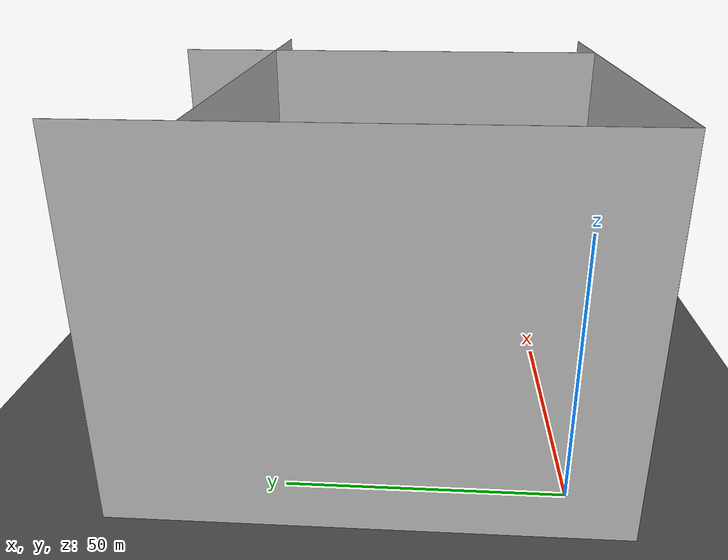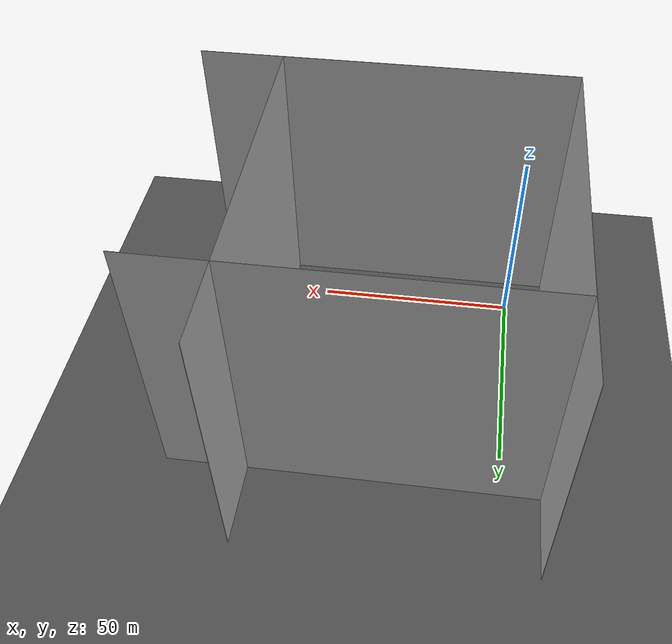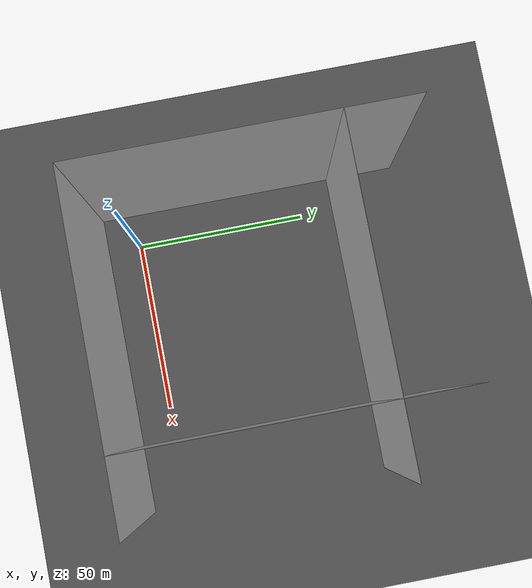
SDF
<sdf version="1.5">
 <world name="dubai_track">
  <plugin name="ros_interface_plugin" filename="librotors_gazebo_ros_interface_plugin.so"/>
  <physics name="default_physics" default="0" type="ode">
   <gravity>0 0 -9.8066</gravity>
   <ode>
    <solver>
     <type>quick</type>
     <iters>150</iters>
     <sor>1.3</sor>
     <use_dynamic_moi_rescaling>0</use_dynamic_moi_rescaling>
    </solver>
    <constraints>
     <cfm>0.00001</cfm>
     <erp>0.2</erp>
     <contact_max_correcting_vel>1000</contact_max_correcting_vel>
     <contact_surface_layer>0.01</contact_surface_layer>
    </constraints>
   </ode>
   <max_step_size>0.004</max_step_size>
   <real_time_factor>1000.0</real_time_factor>
   <real_time_update_rate>250</real_time_update_rate>
   <magnetic_field>6.0e-6 2.3e-5 -4.2e-5</magnetic_field>
  </physics>
  <model name="ground_plane">
   <static>1</static>
   <link name="link">
    <collision name="collision">
     <geometry><plane><normal>0 0 1</normal><size>120 120</size></plane></geometry>
     <surface><friction><ode><mu>100</mu><mu2>50</mu2></ode></friction></surface>
    </collision>
    <visual name="visual">
     <cast_shadows>0</cast_shadows>
     <geometry><plane><normal>0 0 1</normal><size>120 120</size></plane></geometry>
     <material>
      <script>
       <uri>model://race_track/iros_materials/materials/scripts/asphalt.material</uri>
       <uri>model://race_track/iros_materials/materials/textures</uri>
       <name>iros/asphalt</name>
      </script>
     </material>
    </visual>
   </link>
  </model>
  <model name="wall_1">
   <pose>-10 35 34 0 -0 0</pose>
   <static>1</static>
   <link name="link">
    <inertial><mass>1</mass></inertial>
    <collision name="collision"><geometry><box><size>0.1 90 70</size></box></geometry></collision>
    <visual name="visual">
     <geometry><box><size>0.1 90 70</size></box></geometry>
     <material>
      <script>
       <uri>model://race_track/iros_materials/materials/scripts/sky.material</uri>
       <uri>model://race_track/iros_materials/materials/textures</uri>
       <name>iros/sky</name>
      </script>
     </material>
    </visual>
   </link>
  </model>
  <model name="wall_2">
   <pose>60 35 34 0 -0 0</pose>
   <static>1</static>
   <link name="link">
    <inertial><mass>1</mass></inertial>
    <collision name="collision"><geometry><box><size>0.1 90 70</size></box></geometry></collision>
    <visual name="visual">
     <geometry><box><size>0.1 90 70</size></box></geometry>
     <material>
      <script>
       <uri>model://race_track/iros_materials/materials/scripts/sky.material</uri>
       <uri>model://race_track/iros_materials/materials/textures</uri>
       <name>iros/sky</name>
      </script>
     </material>
    </visual>
   </link>
  </model>
  <model name="wall_3">
   <pose>35 60 34 0 -0 0</pose>
   <static>1</static>
   <link name="link">
    <inertial><mass>1</mass></inertial>
    <collision name="collision"><geometry><box><size>90 0.1 70</size></box></geometry></collision>
    <visual name="visual">
     <geometry><box><size>90 0.1 70</size></box></geometry>
     <material>
      <script>
       <uri>model://race_track/iros_materials/materials/scripts/sky.material</uri>
       <uri>model://race_track/iros_materials/materials/textures</uri>
       <name>iros/sky</name>
      </script>
     </material>
    </visual>
   </link>
  </model>
  <model name="wall_4">
   <pose>35 -10 34 0 -0 0</pose>
   <static>1</static>
   <link name="link">
    <inertial><mass>1</mass></inertial>
    <collision name="collision"><geometry><box><size>90 0.1 70</size></box></geometry></collision>
    <visual name="visual">
     <geometry><box><size>90 0.1 70</size></box></geometry>
     <material>
      <script>
       <uri>model://race_track/iros_materials/materials/scripts/sky.material</uri>
       <uri>model://race_track/iros_materials/materials/textures</uri>
       <name>iros/sky</name>
      </script>
     </material>
    </visual>
   </link>
  </model>
  <scene><ambient>1 1 1 1</ambient><background>0.7 0.7 0.7 1</background><shadows>1</shadows></scene>
  <gravity>0 0 -9.8</gravity>
  <magnetic_field>6e-06 2.3e-05 -4.2e-05</magnetic_field>
  <atmosphere type="adiabatic"/>
  <audio><device>default</device></audio>
  <spherical_coordinates>
   <surface_model>EARTH_WGS84</surface_model>
   <latitude_deg>0</latitude_deg>
   <longitude_deg>0</longitude_deg>
   <elevation>0</elevation>
   <heading_deg>0</heading_deg>
  </spherical_coordinates>
  <light name="user_point_light_0" type="point">
   <pose>14.3744 -31.3614 1 0 -0 0</pose>
   <diffuse>0.5 0.5 0.5 1</diffuse>
   <specular>0.1 0.1 0.1 1</specular>
   <attenuation>
    <range>100</range>
    <constant>1.0</constant>
    <linear>0.0</linear>
    <quadratic>0.0</quadratic>
   </attenuation>
   <cast_shadows>0</cast_shadows>
   <direction>0 0 -1</direction>
  </light>
  <light name="user_point_light_1" type="point">
   <pose>22.1188 -31.6852 1 0 -0 0</pose>
   <diffuse>0.5 0.5 0.5 1</diffuse>
   <specular>0.1 0.1 0.1 1</specular>
   <attenuation>
    <range>100</range>
    <constant>1.0</constant>
    <linear>0.0</linear>
    <quadratic>0.0</quadratic>
   </attenuation>
   <cast_shadows>0</cast_shadows>
   <direction>0 0 -1</direction>
  </light>
  <light name="user_point_light_2" type="point">
   <pose>31.4331 -33.084 1 0 -0 0</pose>
   <diffuse>0.5 0.5 0.5 1</diffuse>
   <specular>0.1 0.1 0.1 1</specular>
   <attenuation>
    <range>100</range>
    <constant>1.0</constant>
    <linear>0.0</linear>
    <quadratic>0.0</quadratic>
   </attenuation>
   <cast_shadows>0</cast_shadows>
   <direction>0 0 -1</direction>
  </light>
  <light name="user_point_light_3" type="point">
   <pose>37.135 -35.0607 1 0 -0 0</pose>
   <diffuse>0.5 0.5 0.5 1</diffuse>
   <specular>0.1 0.1 0.1 1</specular>
   <attenuation>
    <range>100</range>
    <constant>1.0</constant>
    <linear>0.0</linear>
    <quadratic>0.0</quadratic>
   </attenuation>
   <cast_shadows>0</cast_shadows>
   <direction>0 0 -1</direction>
  </light>
  <light name="user_point_light_4" type="point">
   <pose>6.84622 -30.4097 1 0 -0 0</pose>
   <diffuse>0.5 0.5 0.5 1</diffuse>
   <specular>0.1 0.1 0.1 1</specular>
   <attenuation>
    <range>100</range>
    <constant>1.0</constant>
    <linear>0.0</linear>
    <quadratic>0.0</quadratic>
   </attenuation>
   <cast_shadows>0</cast_shadows>
   <direction>0 0 -1</direction>
  </light>
  <light name="user_point_light_5" type="point">
   <pose>1.43993 -35.6145 1 0 -0 0</pose>
   <diffuse>0.5 0.5 0.5 1</diffuse>
   <specular>0.1 0.1 0.1 1</specular>
   <attenuation>
    <range>100</range>
    <constant>1.0</constant>
    <linear>0.0</linear>
    <quadratic>0.0</quadratic>
   </attenuation>
   <cast_shadows>0</cast_shadows>
   <direction>0 0 -1</direction>
  </light>
  <light name="user_point_light_6" type="point">
   <pose>14.8 -41.0504 1 0 -0 0</pose>
   <diffuse>0.5 0.5 0.5 1</diffuse>
   <specular>0.1 0.1 0.1 1</specular>
   <attenuation>
    <range>100</range>
    <constant>1.0</constant>
    <linear>0.0</linear>
    <quadratic>0.0</quadratic>
   </attenuation>
   <cast_shadows>0</cast_shadows>
   <direction>0 0 -1</direction>
  </light>
  <light name="user_point_light_7" type="point">
   <pose>23.6794 -39.9093 1 0 -0 0</pose>
   <diffuse>0.5 0.5 0.5 1</diffuse>
   <specular>0.1 0.1 0.1 1</specular>
   <attenuation>
    <range>100</range>
    <constant>1.0</constant>
    <linear>0.0</linear>
    <quadratic>0.0</quadratic>
   </attenuation>
   <cast_shadows>0</cast_shadows>
   <direction>0 0 -1</direction>
  </light>
  <light name="user_point_light_8" type="point">
   <pose>30.8131 -42.2014 1 0 -0 0</pose>
   <diffuse>0.5 0.5 0.5 1</diffuse>
   <specular>0.1 0.1 0.1 1</specular>
   <attenuation>
    <range>100</range>
    <constant>1.0</constant>
    <linear>0.0</linear>
    <quadratic>0.0</quadratic>
   </attenuation>
   <cast_shadows>0</cast_shadows>
   <direction>0 0 -1</direction>
  </light>
  <light name="user_point_light_9" type="point">
   <pose>42.6462 -44.2737 1 0 -0 0</pose>
   <diffuse>0.5 0.5 0.5 1</diffuse>
   <specular>0.1 0.1 0.1 1</specular>
   <attenuation>
    <range>100</range>
    <constant>1.0</constant>
    <linear>0.0</linear>
    <quadratic>0.0</quadratic>
   </attenuation>
   <cast_shadows>0</cast_shadows>
   <direction>0 0 -1</direction>
  </light>
  <light name="user_directional_light_0" type="directional">
   <pose>20.2832 -37.1175 1 0 -0 0</pose>
   <diffuse>0.5 0.5 0.5 1</diffuse>
   <specular>0.1 0.1 0.1 1</specular>
   <direction>0.1 0.1 -0.9</direction>
   <attenuation>
    <range>100</range>
    <constant>1.0</constant>
    <linear>0.0</linear>
    <quadratic>0.0</quadratic>
   </attenuation>
  </light>
 </world>
</sdf>
